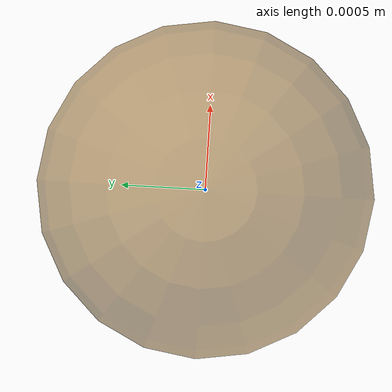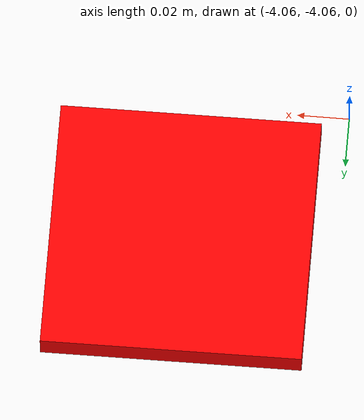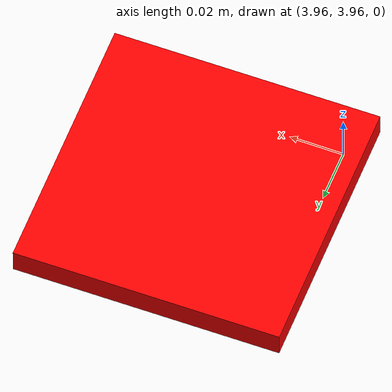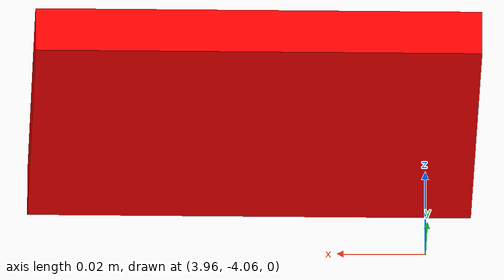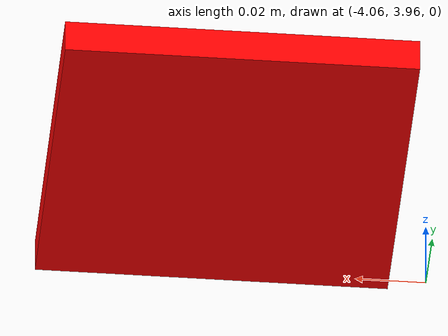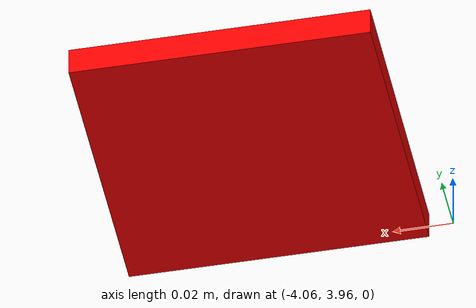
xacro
<?xml version="1.0" ?>
<robot name="real" xmlns:xacro="http://www.ros.org/wiki/xacro">

    <xacro:property name="QR_length"    value="0.1" /> <!-- 摄像头长度(x) -->
    <xacro:property name="QR_width"     value="0.1" /> <!-- 摄像头宽度(y) -->
    <xacro:property name="QR_height"    value="0.01" /> <!-- 摄像头高度(z) -->

    <!-- Define the base_footprint link -->
    <link name="base_footprint">
    <visual name="visual">
        <geometry>
            <sphere radius="0.001" />
        </geometry>
        <material name="yellow">
            <color rgba="0.5 0.3 0.0 0.5" />
        </material>
    </visual>
    </link>

    <!-- Define a macro for creating a red cube -->
    <xacro:macro name="create_red_cube" params="x y z link_name">
    <link name="${link_name}">
        <!-- Collision geometry for the cube -->
        <collision>
            <geometry>
                <box size="${QR_length} ${QR_width} ${QR_height}" />
            </geometry>
            <origin xyz="${x} ${y} ${z}" rpy="0 0 0"/>
        </collision>

        <!-- Visual appearance of the cube -->
        <visual>
            <geometry>
                <box size="${QR_length} ${QR_width} ${QR_height}" />
            </geometry>
            <origin xyz="${x} ${y} ${z}" rpy="0 0 0"/>
            <material name="Red">
                <color rgba="1.0 0.0 0.0 1.0" />
            </material>
        </visual>
    </link>

    <!-- Define a joint to connect the cube's link to base_footprint -->
    <joint name="${link_name}_joint" type="fixed">
      <parent link="base_footprint"/>
      <child link="${link_name}"/>
      <origin xyz="${x} ${y} ${z}" rpy="0 0 0"/>
    </joint>
  </xacro:macro>

  <!-- Instance of red cubes at different coordinates -->
  <!-- Instance 1: (x, y) -->
  <xacro:create_red_cube x="-2" y="2" z="0.005" link_name="red_cube_1" />

  <!-- Instance 2: (x+2, y+2) -->
  <xacro:create_red_cube x="2" y="2" z="0.005" link_name="red_cube_2" />

  <!-- Instance 3: (x-2, y-2) -->
  <xacro:create_red_cube x="-2" y="-2" z="0.005" link_name="red_cube_3" />

  <!-- Instance 4: (x+2, y-2) -->
  <xacro:create_red_cube x="2" y="-2" z="0.005" link_name="red_cube_4" />

</robot>
